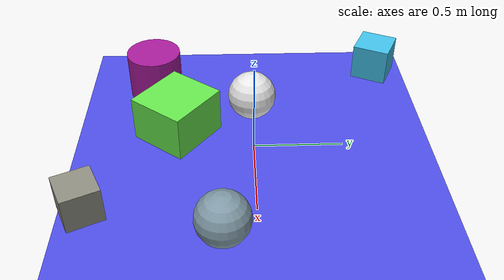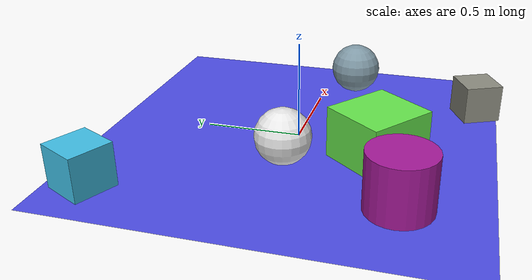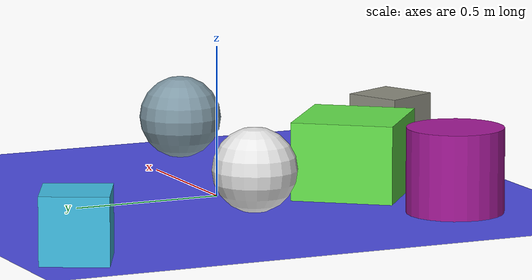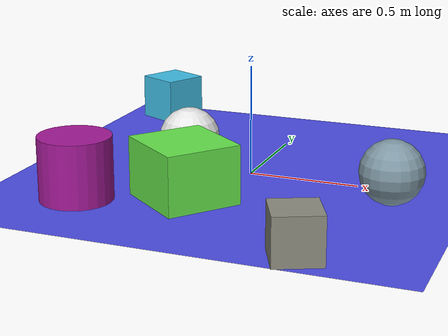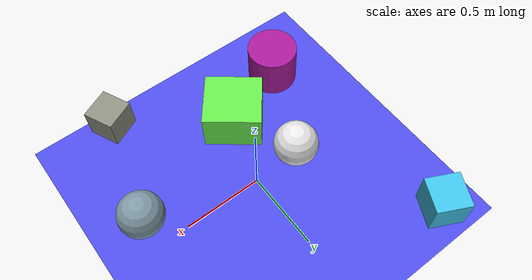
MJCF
<mujoco>
   <asset>
<texture type="skybox" builtin="gradient" rgb1="0.8 0.6 0.9" rgb2="0.4 0.7 0.0" width="500" height="500"/>
<texture name="gradient_0" builtin="gradient" rgb1="0.9 0.4 0.8" rgb2="0.1 0.8 0.5" width="500" height="500"/>
<texture name="checker_1" builtin="checker" rgb1="0.8 0.9 0.9" rgb2="0.3 0.2 0.1" width="500" height="500"/>
<texture name="gradient_2" builtin="gradient" rgb1="0.2 0.8 0.9" rgb2="0.3 0.7 0.9" width="500" height="500"/>
<texture name="flat_3" builtin="flat" rgb1="0.4 0.9 0.3" rgb2="0.4 0.9 0.3"  width="500" height="500"/>
<texture name="checker_4" builtin="checker" rgb1="0.6 0.2 0.8" rgb2="0.7 0.0 0.4" width="500" height="500"/>
<texture name="flat_5" builtin="flat" rgb1="0.9 0.9 0.9" rgb2="0.9 0.9 0.9"  width="500" height="500"/><material name="gradient_0_mat" reflectance="0.834438014379997" texture="gradient_0" texuniform="true"/>
<material name="checker_1_mat" reflectance="0.4920041854063191" texrepeat="9 9" texture="checker_1" texuniform="false" />
<material name="gradient_2_mat" reflectance="0.47080499013143273" texture="gradient_2" texuniform="true"/>
<material name="flat_3_mat" reflectance="0.14089699866999394" texture="flat_3" texuniform="true"/>
<material name="checker_4_mat" reflectance="0.11993933006058333" texrepeat="8 8" texture="checker_4" texuniform="false" />
<material name="flat_5_mat" reflectance="0.25570673565889734" texture="flat_5" texuniform="true"/>
   </asset>

   <worldbody>
     <geom type="plane" size="1 1 0.1" rgba="0.3 0.3 0.9 1" />
<light pos="-0.3219506491834192 -0.88140633883994 2" dir="0 0 -1" cutoff="90" diffuse="1 1 1" specular="1 1 1"/>
<geom type="sphere" pos="0.69 -0.17 0.14" size="0.14 0.14 0.14" material="gradient_0_mat" euler="0 0 64" />
<geom type="box" pos="0.5 -0.88 0.1" size="0.1 0.1 0.1" material="checker_1_mat" euler="0 0 25" />
<geom type="box" pos="-0.75 0.81 0.11" size="0.11 0.11 0.11" material="gradient_2_mat" euler="0 0 64" />
<geom type="box" pos="-0.14 -0.43 0.13" size="0.17 0.18 0.13" material="flat_3_mat" euler="0 0 52" />
<geom type="cylinder" pos="-0.57 -0.59 0.14" size="0.16 0.14 0.14" material="checker_4_mat" euler="0 0 47" />
<geom type="sphere" pos="-0.3 -0.0 0.14" size="0.14 0.14 0.14" material="flat_5_mat" euler="0 0 15" /><camera euler="60 0 180" fovy="60" name="camera1" pos="-0.2 -1.5 1"></camera>   </worldbody>
   <visual>
      <headlight diffuse="0.7 0.7 0.7"/>
   </visual>
</mujoco>
